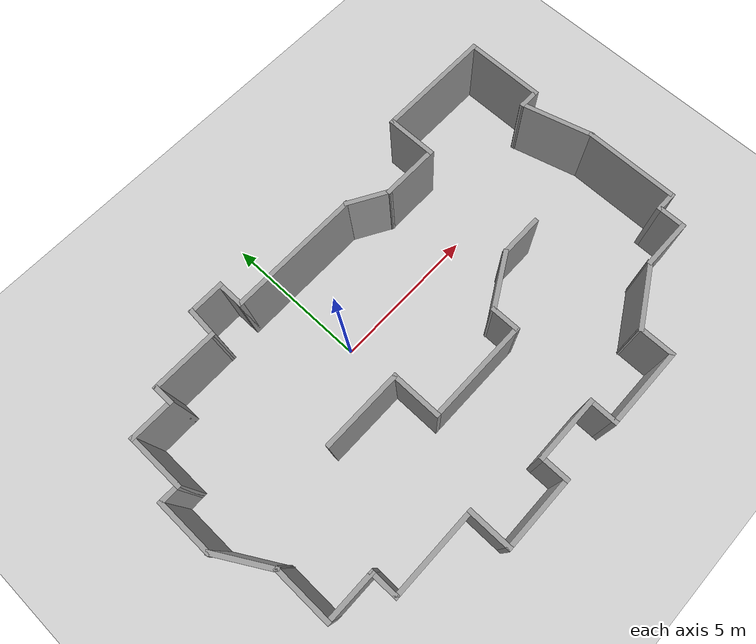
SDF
<sdf version="1.7">
 <world name="default">
  <physics type="ode">
   <gravity>0 0 -9.81</gravity>
   <ode>
    <solver><type>quick</type><iters>50</iters><sor>1.4</sor></solver>
    <constraints>
     <cfm>0.0</cfm>
     <erp>0.2</erp>
     <contact_max_correcting_vel>100.0</contact_max_correcting_vel>
     <contact_surface_layer>0.0</contact_surface_layer>
    </constraints>
   </ode>
   <real_time_update_rate>1000</real_time_update_rate>
   <max_step_size>0.005</max_step_size>
  </physics>
  <plugin filename="gz-sim-physics-system" name="gz::sim::systems::Physics"/>
  <plugin filename="gz-sim-user-commands-system" name="gz::sim::systems::UserCommands"/>
  <plugin filename="gz-sim-scene-broadcaster-system" name="gz::sim::systems::SceneBroadcaster"/>
  <plugin filename="gz-sim-sensors-system" name="gz::sim::systems::Sensors">
   <render_engine>ogre2</render_engine>
  </plugin>
  <plugin filename="gz-sim-imu-system" name="gz::sim::systems::Imu"/>
  <include><uri>model://sun</uri></include>
  <include><uri>model://ground_plane</uri></include>
  <model name="corridor_2">
   <pose>1.52856 -1.84871 0 0 -0 0</pose>
   <link name="Wall_0">
    <collision name="Wall_0_Collision">
     <geometry><box><size>2.75 0.15 2.5</size></box></geometry>
     <pose>0 0 1.25 0 -0 0</pose>
    </collision>
    <visual name="Wall_0_Visual">
     <pose>0 0 1.25 0 -0 0</pose>
     <geometry><box><size>2.75 0.15 2.5</size></box></geometry>
     <material>
      <script><uri>file://media/materials/scripts/gazebo.material</uri><name>Gazebo/Grey</name></script>
      <ambient>1 1 1 1</ambient>
     </material>
     <meta><layer>0</layer></meta>
    </visual>
    <pose>-2.83856 -0.171293 0 0 -0 0</pose>
   </link>
   <link name="Wall_1">
    <collision name="Wall_1_Collision">
     <geometry><box><size>1.75 0.15 2.5</size></box></geometry>
     <pose>0 0 1.25 0 -0 0</pose>
    </collision>
    <visual name="Wall_1_Visual">
     <pose>0 0 1.25 0 -0 0</pose>
     <geometry><box><size>1.75 0.15 2.5</size></box></geometry>
     <material>
      <script><uri>file://media/materials/scripts/gazebo.material</uri><name>Gazebo/Grey</name></script>
      <ambient>1 1 1 1</ambient>
     </material>
     <meta><layer>0</layer></meta>
    </visual>
    <pose>-1.53856 -0.971293 0 0 -0 -1.5708</pose>
   </link>
   <link name="Wall_10">
    <collision name="Wall_10_Collision">
     <geometry><box><size>1.5 0.15 2.5</size></box></geometry>
     <pose>0 0 1.25 0 -0 0</pose>
    </collision>
    <visual name="Wall_10_Visual">
     <pose>0 0 1.25 0 -0 0</pose>
     <geometry><box><size>1.5 0.15 2.5</size></box></geometry>
     <material>
      <script><uri>file://media/materials/scripts/gazebo.material</uri><name>Gazebo/Grey</name></script>
      <ambient>1 1 1 1</ambient>
     </material>
     <meta><layer>0</layer></meta>
    </visual>
    <pose>1.93433 4.22246 0 0 -0 -0.523599</pose>
   </link>
   <link name="Wall_11">
    <collision name="Wall_11_Collision">
     <geometry><box><size>2 0.15 2.5</size></box></geometry>
     <pose>0 0 1.25 0 -0 0</pose>
    </collision>
    <visual name="Wall_11_Visual">
     <pose>0 0 1.25 0 -0 0</pose>
     <geometry><box><size>2 0.15 2.5</size></box></geometry>
     <material>
      <script><uri>file://media/materials/scripts/gazebo.material</uri><name>Gazebo/Grey</name></script>
      <ambient>1 1 1 1</ambient>
     </material>
     <meta><layer>0</layer></meta>
    </visual>
    <pose>3.4439 3.88496 0 0 -0 0</pose>
   </link>
   <link name="Wall_12">
    <collision name="Wall_12_Collision">
     <geometry><box><size>1.75 0.15 2.5</size></box></geometry>
     <pose>0 0 1.25 0 -0 0</pose>
    </collision>
    <visual name="Wall_12_Visual">
     <pose>0 0 1.25 0 -0 0</pose>
     <geometry><box><size>1.75 0.15 2.5</size></box></geometry>
     <material>
      <script><uri>file://media/materials/scripts/gazebo.material</uri><name>Gazebo/Grey</name></script>
      <ambient>1 1 1 1</ambient>
     </material>
     <meta><layer>0</layer></meta>
    </visual>
    <pose>4.3689 4.68496 0 0 -0 1.5708</pose>
   </link>
   <link name="Wall_13">
    <collision name="Wall_13_Collision">
     <geometry><box><size>4 0.15 2.5</size></box></geometry>
     <pose>0 0 1.25 0 -0 0</pose>
    </collision>
    <visual name="Wall_13_Visual">
     <pose>0 0 1.25 0 -0 0</pose>
     <geometry><box><size>4 0.15 2.5</size></box></geometry>
     <material>
      <script><uri>file://media/materials/scripts/gazebo.material</uri><name>Gazebo/Grey</name></script>
      <ambient>1 1 1 1</ambient>
     </material>
     <meta><layer>0</layer></meta>
    </visual>
    <pose>6.2939 5.48496 0 0 -0 0</pose>
   </link>
   <link name="Wall_14">
    <collision name="Wall_14_Collision">
     <geometry><box><size>2.75 0.15 2.5</size></box></geometry>
     <pose>0 0 1.25 0 -0 0</pose>
    </collision>
    <visual name="Wall_14_Visual">
     <pose>0 0 1.25 0 -0 0</pose>
     <geometry><box><size>2.75 0.15 2.5</size></box></geometry>
     <material>
      <script><uri>file://media/materials/scripts/gazebo.material</uri><name>Gazebo/Grey</name></script>
      <ambient>1 1 1 1</ambient>
     </material>
     <meta><layer>0</layer></meta>
    </visual>
    <pose>8.2189 4.18496 0 0 -0 -1.5708</pose>
   </link>
   <link name="Wall_15">
    <collision name="Wall_15_Collision">
     <geometry><box><size>0.75 0.15 2.5</size></box></geometry>
     <pose>0 0 1.25 0 -0 0</pose>
    </collision>
    <visual name="Wall_15_Visual">
     <pose>0 0 1.25 0 -0 0</pose>
     <geometry><box><size>0.75 0.15 2.5</size></box></geometry>
     <material>
      <script><uri>file://media/materials/scripts/gazebo.material</uri><name>Gazebo/Grey</name></script>
      <ambient>1 1 1 1</ambient>
     </material>
     <meta><layer>0</layer></meta>
    </visual>
    <pose>7.9189 2.88496 0 0 -0 3.14159</pose>
   </link>
   <link name="Wall_16">
    <collision name="Wall_16_Collision">
     <geometry><box><size>2.5 0.15 2.5</size></box></geometry>
     <pose>0 0 1.25 0 -0 0</pose>
    </collision>
    <visual name="Wall_16_Visual">
     <pose>0 0 1.25 0 -0 0</pose>
     <geometry><box><size>2.5 0.15 2.5</size></box></geometry>
     <material>
      <script><uri>file://media/materials/scripts/gazebo.material</uri><name>Gazebo/Grey</name></script>
      <ambient>1 1 1 1</ambient>
     </material>
     <meta><layer>0</layer></meta>
    </visual>
    <pose>7.92301 1.75 0 0 -0 -1.309</pose>
   </link>
   <link name="Wall_17">
    <collision name="Wall_17_Collision">
     <geometry><box><size>3.25 0.15 2.5</size></box></geometry>
     <pose>0 0 1.25 0 -0 0</pose>
    </collision>
    <visual name="Wall_17_Visual">
     <pose>0 0 1.25 0 -0 0</pose>
     <geometry><box><size>3.25 0.15 2.5</size></box></geometry>
     <material>
      <script><uri>file://media/materials/scripts/gazebo.material</uri><name>Gazebo/Grey</name></script>
      <ambient>1 1 1 1</ambient>
     </material>
     <meta><layer>0</layer></meta>
    </visual>
    <pose>8.22712 -0.934963 0 0 -0 -1.5708</pose>
   </link>
   <link name="Wall_18">
    <collision name="Wall_18_Collision">
     <geometry><box><size>0.75 0.15 2.5</size></box></geometry>
     <pose>0 0 1.25 0 -0 0</pose>
    </collision>
    <visual name="Wall_18_Visual">
     <pose>0 0 1.25 0 -0 0</pose>
     <geometry><box><size>0.75 0.15 2.5</size></box></geometry>
     <material>
      <script><uri>file://media/materials/scripts/gazebo.material</uri><name>Gazebo/Grey</name></script>
      <ambient>1 1 1 1</ambient>
     </material>
     <meta><layer>0</layer></meta>
    </visual>
    <pose>7.92712 -2.48496 0 0 -0 3.14159</pose>
   </link>
   <link name="Wall_19">
    <collision name="Wall_19_Collision">
     <geometry><box><size>1 0.15 2.5</size></box></geometry>
     <pose>0 0 1.25 0 -0 0</pose>
    </collision>
    <visual name="Wall_19_Visual">
     <pose>0 0 1.25 0 -0 0</pose>
     <geometry><box><size>1 0.15 2.5</size></box></geometry>
     <material>
      <script><uri>file://media/materials/scripts/gazebo.material</uri><name>Gazebo/Grey</name></script>
      <ambient>1 1 1 1</ambient>
     </material>
     <meta><layer>0</layer></meta>
    </visual>
    <pose>7.62713 -2.90996 0 0 -0 -1.5708</pose>
   </link>
   <link name="Wall_2">
    <collision name="Wall_2_Collision">
     <geometry><box><size>3.5 0.15 2.5</size></box></geometry>
     <pose>0 0 1.25 0 -0 0</pose>
    </collision>
    <visual name="Wall_2_Visual">
     <pose>0 0 1.25 0 -0 0</pose>
     <geometry><box><size>3.5 0.15 2.5</size></box></geometry>
     <material>
      <script><uri>file://media/materials/scripts/gazebo.material</uri><name>Gazebo/Grey</name></script>
      <ambient>1 1 1 1</ambient>
     </material>
     <meta><layer>0</layer></meta>
    </visual>
    <pose>0.136444 -1.77129 0 0 -0 0</pose>
   </link>
   <link name="Wall_20">
    <collision name="Wall_20_Collision">
     <geometry><box><size>1.75 0.15 2.5</size></box></geometry>
     <pose>0 0 1.25 0 -0 0</pose>
    </collision>
    <visual name="Wall_20_Visual">
     <pose>0 0 1.25 0 -0 0</pose>
     <geometry><box><size>1.75 0.15 2.5</size></box></geometry>
     <material>
      <script><uri>file://media/materials/scripts/gazebo.material</uri><name>Gazebo/Grey</name></script>
      <ambient>1 1 1 1</ambient>
     </material>
     <meta><layer>0</layer></meta>
    </visual>
    <pose>6.82712 -3.33496 0 0 -0 3.14159</pose>
   </link>
   <link name="Wall_21">
    <collision name="Wall_21_Collision">
     <geometry><box><size>2.25 0.15 2.5</size></box></geometry>
     <pose>0 0 1.25 0 -0 0</pose>
    </collision>
    <visual name="Wall_21_Visual">
     <pose>0 0 1.25 0 -0 0</pose>
     <geometry><box><size>2.25 0.15 2.5</size></box></geometry>
     <material>
      <script><uri>file://media/materials/scripts/gazebo.material</uri><name>Gazebo/Grey</name></script>
      <ambient>1 1 1 1</ambient>
     </material>
     <meta><layer>0</layer></meta>
    </visual>
    <pose>5.1178 -3.85996 0 0 -0 -2.61799</pose>
   </link>
   <link name="Wall_22">
    <collision name="Wall_22_Collision">
     <geometry><box><size>1.25 0.15 2.5</size></box></geometry>
     <pose>0 0 1.25 0 -0 0</pose>
    </collision>
    <visual name="Wall_22_Visual">
     <pose>0 0 1.25 0 -0 0</pose>
     <geometry><box><size>1.25 0.15 2.5</size></box></geometry>
     <material>
      <script><uri>file://media/materials/scripts/gazebo.material</uri><name>Gazebo/Grey</name></script>
      <ambient>1 1 1 1</ambient>
     </material>
     <meta><layer>0</layer></meta>
    </visual>
    <pose>4.20847 -4.93496 0 0 -0 -1.5708</pose>
   </link>
   <link name="Wall_23">
    <collision name="Wall_23_Collision">
     <geometry><box><size>2.75 0.15 2.5</size></box></geometry>
     <pose>0 0 1.25 0 -0 0</pose>
    </collision>
    <visual name="Wall_23_Visual">
     <pose>0 0 1.25 0 -0 0</pose>
     <geometry><box><size>2.75 0.15 2.5</size></box></geometry>
     <material>
      <script><uri>file://media/materials/scripts/gazebo.material</uri><name>Gazebo/Grey</name></script>
      <ambient>1 1 1 1</ambient>
     </material>
     <meta><layer>0</layer></meta>
    </visual>
    <pose>2.90847 -5.48496 0 0 -0 3.14159</pose>
   </link>
   <link name="Wall_24">
    <collision name="Wall_24_Collision">
     <geometry><box><size>1 0.15 2.5</size></box></geometry>
     <pose>0 0 1.25 0 -0 0</pose>
    </collision>
    <visual name="Wall_24_Visual">
     <pose>0 0 1.25 0 -0 0</pose>
     <geometry><box><size>1 0.15 2.5</size></box></geometry>
     <material>
      <script><uri>file://media/materials/scripts/gazebo.material</uri><name>Gazebo/Grey</name></script>
      <ambient>1 1 1 1</ambient>
     </material>
     <meta><layer>0</layer></meta>
    </visual>
    <pose>1.60847 -5.05996 0 0 -0 1.5708</pose>
   </link>
   <link name="Wall_25">
    <collision name="Wall_25_Collision">
     <geometry><box><size>2.25 0.15 2.5</size></box></geometry>
     <pose>0 0 1.25 0 -0 0</pose>
    </collision>
    <visual name="Wall_25_Visual">
     <pose>0 0 1.25 0 -0 0</pose>
     <geometry><box><size>2.25 0.15 2.5</size></box></geometry>
     <material>
      <script><uri>file://media/materials/scripts/gazebo.material</uri><name>Gazebo/Grey</name></script>
      <ambient>1 1 1 1</ambient>
     </material>
     <meta><layer>0</layer></meta>
    </visual>
    <pose>0.558471 -4.63496 0 0 -0 3.14159</pose>
   </link>
   <link name="Wall_26">
    <collision name="Wall_26_Collision">
     <geometry><box><size>1 0.15 2.5</size></box></geometry>
     <pose>0 0 1.25 0 -0 0</pose>
    </collision>
    <visual name="Wall_26_Visual">
     <pose>0 0 1.25 0 -0 0</pose>
     <geometry><box><size>1 0.15 2.5</size></box></geometry>
     <material>
      <script><uri>file://media/materials/scripts/gazebo.material</uri><name>Gazebo/Grey</name></script>
      <ambient>1 1 1 1</ambient>
     </material>
     <meta><layer>0</layer></meta>
    </visual>
    <pose>-0.491529 -5.05996 0 0 -0 -1.5708</pose>
   </link>
   <link name="Wall_27">
    <collision name="Wall_27_Collision">
     <geometry><box><size>2.5 0.15 2.5</size></box></geometry>
     <pose>0 0 1.25 0 -0 0</pose>
    </collision>
    <visual name="Wall_27_Visual">
     <pose>0 0 1.25 0 -0 0</pose>
     <geometry><box><size>2.5 0.15 2.5</size></box></geometry>
     <material>
      <script><uri>file://media/materials/scripts/gazebo.material</uri><name>Gazebo/Grey</name></script>
      <ambient>1 1 1 1</ambient>
     </material>
     <meta><layer>0</layer></meta>
    </visual>
    <pose>-1.66653 -5.48496 0 0 -0 3.14159</pose>
   </link>
   <link name="Wall_28">
    <collision name="Wall_28_Collision">
     <geometry><box><size>1.5 0.15 2.5</size></box></geometry>
     <pose>0 0 1.25 0 -0 0</pose>
    </collision>
    <visual name="Wall_28_Visual">
     <pose>0 0 1.25 0 -0 0</pose>
     <geometry><box><size>1.5 0.15 2.5</size></box></geometry>
     <material>
      <script><uri>file://media/materials/scripts/gazebo.material</uri><name>Gazebo/Grey</name></script>
      <ambient>1 1 1 1</ambient>
     </material>
     <meta><layer>0</layer></meta>
    </visual>
    <pose>-2.84153 -4.80996 0 0 -0 1.5708</pose>
   </link>
   <link name="Wall_29">
    <collision name="Wall_29_Collision">
     <geometry><box><size>3 0.15 2.5</size></box></geometry>
     <pose>0 0 1.25 0 -0 0</pose>
    </collision>
    <visual name="Wall_29_Visual">
     <pose>0 0 1.25 0 -0 0</pose>
     <geometry><box><size>3 0.15 2.5</size></box></geometry>
     <material>
      <script><uri>file://media/materials/scripts/gazebo.material</uri><name>Gazebo/Grey</name></script>
      <ambient>1 1 1 1</ambient>
     </material>
     <meta><layer>0</layer></meta>
    </visual>
    <pose>-4.26653 -4.13496 0 0 -0 3.14159</pose>
   </link>
   <link name="Wall_3">
    <collision name="Wall_3_Collision">
     <geometry><box><size>1 0.15 2.5</size></box></geometry>
     <pose>0 0 1.25 0 -0 0</pose>
    </collision>
    <visual name="Wall_3_Visual">
     <pose>0 0 1.25 0 -0 0</pose>
     <geometry><box><size>1 0.15 2.5</size></box></geometry>
     <material>
      <script><uri>file://media/materials/scripts/gazebo.material</uri><name>Gazebo/Grey</name></script>
      <ambient>1 1 1 1</ambient>
     </material>
     <meta><layer>0</layer></meta>
    </visual>
    <pose>1.81144 -1.34629 0 0 -0 1.5708</pose>
   </link>
   <link name="Wall_30">
    <collision name="Wall_30_Collision">
     <geometry><box><size>1 0.15 2.5</size></box></geometry>
     <pose>0 0 1.25 0 -0 0</pose>
    </collision>
    <visual name="Wall_30_Visual">
     <pose>0 0 1.25 0 -0 0</pose>
     <geometry><box><size>1 0.15 2.5</size></box></geometry>
     <material>
      <script><uri>file://media/materials/scripts/gazebo.material</uri><name>Gazebo/Grey</name></script>
      <ambient>1 1 1 1</ambient>
     </material>
     <meta><layer>0</layer></meta>
    </visual>
    <pose>-5.69153 -3.70996 0 0 -0 1.5708</pose>
   </link>
   <link name="Wall_31">
    <collision name="Wall_31_Collision">
     <geometry><box><size>1.75 0.15 2.5</size></box></geometry>
     <pose>0 0 1.25 0 -0 0</pose>
    </collision>
    <visual name="Wall_31_Visual">
     <pose>0 0 1.25 0 -0 0</pose>
     <geometry><box><size>1.75 0.15 2.5</size></box></geometry>
     <material>
      <script><uri>file://media/materials/scripts/gazebo.material</uri><name>Gazebo/Grey</name></script>
      <ambient>1 1 1 1</ambient>
     </material>
     <meta><layer>0</layer></meta>
    </visual>
    <pose>-6.49153 -3.28496 0 0 -0 3.14159</pose>
   </link>
   <link name="Wall_32">
    <collision name="Wall_32_Collision">
     <geometry><box><size>2 0.15 2.5</size></box></geometry>
     <pose>0 0 1.25 0 -0 0</pose>
    </collision>
    <visual name="Wall_32_Visual">
     <pose>0 0 1.25 0 -0 0</pose>
     <geometry><box><size>2 0.15 2.5</size></box></geometry>
     <material>
      <script><uri>file://media/materials/scripts/gazebo.material</uri><name>Gazebo/Grey</name></script>
      <ambient>1 1 1 1</ambient>
     </material>
     <meta><layer>0</layer></meta>
    </visual>
    <pose>-7.29153 -2.35996 0 0 -0 1.5708</pose>
   </link>
   <link name="Wall_33">
    <collision name="Wall_33_Collision">
     <geometry><box><size>2 0.15 2.5</size></box></geometry>
     <pose>0 0 1.25 0 -0 0</pose>
    </collision>
    <visual name="Wall_33_Visual">
     <pose>0 0 1.25 0 -0 0</pose>
     <geometry><box><size>2 0.15 2.5</size></box></geometry>
     <material>
      <script><uri>file://media/materials/scripts/gazebo.material</uri><name>Gazebo/Grey</name></script>
      <ambient>1 1 1 1</ambient>
     </material>
     <meta><layer>0</layer></meta>
    </visual>
    <pose>-7.75403 -0.633889 0 0 -0 2.0944</pose>
   </link>
   <link name="Wall_34">
    <collision name="Wall_34_Collision">
     <geometry><box><size>2 0.15 2.5</size></box></geometry>
     <pose>0 0 1.25 0 -0 0</pose>
    </collision>
    <visual name="Wall_34_Visual">
     <pose>0 0 1.25 0 -0 0</pose>
     <geometry><box><size>2 0.15 2.5</size></box></geometry>
     <material>
      <script><uri>file://media/materials/scripts/gazebo.material</uri><name>Gazebo/Grey</name></script>
      <ambient>1 1 1 1</ambient>
     </material>
     <meta><layer>0</layer></meta>
    </visual>
    <pose>-8.21653 1.09218 0 0 -0 1.5708</pose>
   </link>
   <link name="Wall_35">
    <collision name="Wall_35_Collision">
     <geometry><box><size>0.75 0.15 2.5</size></box></geometry>
     <pose>0 0 1.25 0 -0 0</pose>
    </collision>
    <visual name="Wall_35_Visual">
     <pose>0 0 1.25 0 -0 0</pose>
     <geometry><box><size>0.75 0.15 2.5</size></box></geometry>
     <material>
      <script><uri>file://media/materials/scripts/gazebo.material</uri><name>Gazebo/Grey</name></script>
      <ambient>1 1 1 1</ambient>
     </material>
     <meta><layer>0</layer></meta>
    </visual>
    <pose>-7.91653 2.01718 0 0 -0 0</pose>
   </link>
   <link name="Wall_36">
    <collision name="Wall_36_Collision">
     <geometry><box><size>2 0.15 2.5</size></box></geometry>
     <pose>0 0 1.25 0 -0 0</pose>
    </collision>
    <visual name="Wall_36_Visual">
     <pose>0 0 1.25 0 -0 0</pose>
     <geometry><box><size>2 0.15 2.5</size></box></geometry>
     <material>
      <script><uri>file://media/materials/scripts/gazebo.material</uri><name>Gazebo/Grey</name></script>
      <ambient>1 1 1 1</ambient>
     </material>
     <meta><layer>0</layer></meta>
    </visual>
    <pose>-7.61653 2.94218 0 0 -0 1.5708</pose>
   </link>
   <link name="Wall_37">
    <collision name="Wall_37_Collision">
     <geometry><box><size>1.5 0.15 2.5</size></box></geometry>
     <pose>0 0 1.25 0 -0 0</pose>
    </collision>
    <visual name="Wall_37_Visual">
     <pose>0 0 1.25 0 -0 0</pose>
     <geometry><box><size>1.5 0.15 2.5</size></box></geometry>
     <material>
      <script><uri>file://media/materials/scripts/gazebo.material</uri><name>Gazebo/Grey</name></script>
      <ambient>1 1 1 1</ambient>
     </material>
     <meta><layer>0</layer></meta>
    </visual>
    <pose>-6.94153 3.86718 0 0 -0 0</pose>
   </link>
   <link name="Wall_38">
    <collision name="Wall_38_Collision">
     <geometry><box><size>0.75 0.15 2.5</size></box></geometry>
     <pose>0 0 1.25 0 -0 0</pose>
    </collision>
    <visual name="Wall_38_Visual">
     <pose>0 0 1.25 0 -0 0</pose>
     <geometry><box><size>0.75 0.15 2.5</size></box></geometry>
     <material>
      <script><uri>file://media/materials/scripts/gazebo.material</uri><name>Gazebo/Grey</name></script>
      <ambient>1 1 1 1</ambient>
     </material>
     <meta><layer>0</layer></meta>
    </visual>
    <pose>-6.26653 4.16718 0 0 -0 1.5708</pose>
   </link>
   <link name="Wall_39">
    <collision name="Wall_39_Collision">
     <geometry><box><size>2.25 0.15 2.5</size></box></geometry>
     <pose>0 0 1.25 0 -0 0</pose>
    </collision>
    <visual name="Wall_39_Visual">
     <pose>0 0 1.25 0 -0 0</pose>
     <geometry><box><size>2.25 0.15 2.5</size></box></geometry>
     <material>
      <script><uri>file://media/materials/scripts/gazebo.material</uri><name>Gazebo/Grey</name></script>
      <ambient>1 1 1 1</ambient>
     </material>
     <meta><layer>0</layer></meta>
    </visual>
    <pose>-5.21653 4.46718 0 0 -0 0</pose>
   </link>
   <link name="Wall_4">
    <collision name="Wall_4_Collision">
     <geometry><box><size>2 0.15 2.5</size></box></geometry>
     <pose>0 0 1.25 0 -0 0</pose>
    </collision>
    <visual name="Wall_4_Visual">
     <pose>0 0 1.25 0 -0 0</pose>
     <geometry><box><size>2 0.15 2.5</size></box></geometry>
     <material>
      <script><uri>file://media/materials/scripts/gazebo.material</uri><name>Gazebo/Grey</name></script>
      <ambient>1 1 1 1</ambient>
     </material>
     <meta><layer>0</layer></meta>
    </visual>
    <pose>2.61252 -0.458793 0 0 -0 0.523599</pose>
   </link>
   <link name="Wall_40">
    <collision name="Wall_40_Collision">
     <geometry><box><size>0.15 0.15 2.5</size></box></geometry>
     <pose>0 0 1.25 0 -0 0</pose>
    </collision>
    <visual name="Wall_40_Visual">
     <pose>0 0 1.25 0 -0 0</pose>
     <geometry><box><size>0.15 0.15 2.5</size></box></geometry>
     <material>
      <script><uri>file://media/materials/scripts/gazebo.material</uri><name>Gazebo/Grey</name></script>
      <ambient>1 1 1 1</ambient>
     </material>
     <meta><layer>0</layer></meta>
    </visual>
    <pose>-4.16653 4.46718 0 0 -0 0</pose>
   </link>
   <link name="Wall_41">
    <collision name="Wall_41_Collision">
     <geometry><box><size>1.09511 0.15 2.5</size></box></geometry>
     <pose>0 0 1.25 0 -0 0</pose>
    </collision>
    <visual name="Wall_41_Visual">
     <pose>0 0 1.25 0 -0 0</pose>
     <geometry><box><size>1.09511 0.15 2.5</size></box></geometry>
     <material>
      <script><uri>file://media/materials/scripts/gazebo.material</uri><name>Gazebo/Grey</name></script>
      <ambient>1 1 1 1</ambient>
     </material>
     <meta><layer>0</layer></meta>
    </visual>
    <pose>-4.13338 4.93857 0 0 -0 1.50059</pose>
   </link>
   <link name="Wall_5">
    <collision name="Wall_5_Collision">
     <geometry><box><size>1.5 0.15 2.5</size></box></geometry>
     <pose>0 0 1.25 0 -0 0</pose>
    </collision>
    <visual name="Wall_5_Visual">
     <pose>0 0 1.25 0 -0 0</pose>
     <geometry><box><size>1.5 0.15 2.5</size></box></geometry>
     <material>
      <script><uri>file://media/materials/scripts/gazebo.material</uri><name>Gazebo/Grey</name></script>
      <ambient>1 1 1 1</ambient>
     </material>
     <meta><layer>0</layer></meta>
    </visual>
    <pose>4.08859 0.003707 0 0 -0 0</pose>
   </link>
   <link name="Wall_7">
    <collision name="Wall_7_Collision">
     <geometry><box><size>1.25 0.15 2.5</size></box></geometry>
     <pose>0 0 1.25 0 -0 0</pose>
    </collision>
    <visual name="Wall_7_Visual">
     <pose>0 0 1.25 0 -0 0</pose>
     <geometry><box><size>1.25 0.15 2.5</size></box></geometry>
     <material>
      <script><uri>file://media/materials/scripts/gazebo.material</uri><name>Gazebo/Grey</name></script>
      <ambient>1 1 1 1</ambient>
     </material>
     <meta><layer>0</layer></meta>
    </visual>
    <pose>-3.55023 5.40996 0 0 -0 0</pose>
   </link>
   <link name="Wall_8">
    <collision name="Wall_8_Collision">
     <geometry><box><size>1 0.15 2.5</size></box></geometry>
     <pose>0 0 1.25 0 -0 0</pose>
    </collision>
    <visual name="Wall_8_Visual">
     <pose>0 0 1.25 0 -0 0</pose>
     <geometry><box><size>1 0.15 2.5</size></box></geometry>
     <material>
      <script><uri>file://media/materials/scripts/gazebo.material</uri><name>Gazebo/Grey</name></script>
      <ambient>1 1 1 1</ambient>
     </material>
     <meta><layer>0</layer></meta>
    </visual>
    <pose>-3.00023 4.98496 0 0 -0 -1.5708</pose>
   </link>
   <link name="Wall_9">
    <collision name="Wall_9_Collision">
     <geometry><box><size>4.5 0.15 2.5</size></box></geometry>
     <pose>0 0 1.25 0 -0 0</pose>
    </collision>
    <visual name="Wall_9_Visual">
     <pose>0 0 1.25 0 -0 0</pose>
     <geometry><box><size>4.5 0.15 2.5</size></box></geometry>
     <material>
      <script><uri>file://media/materials/scripts/gazebo.material</uri><name>Gazebo/Grey</name></script>
      <ambient>1 1 1 1</ambient>
     </material>
     <meta><layer>0</layer></meta>
    </visual>
    <pose>-0.825234 4.55996 0 0 -0 0</pose>
   </link>
   <static>1</static>
  </model>
 </world>
</sdf>
